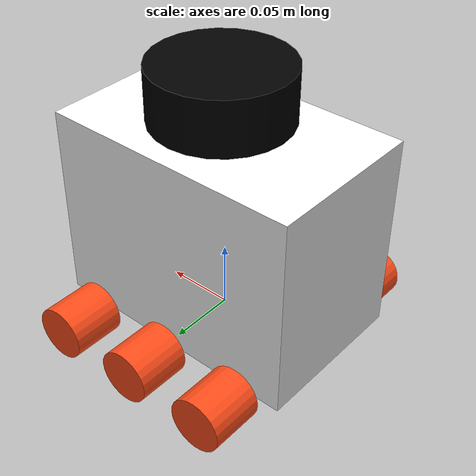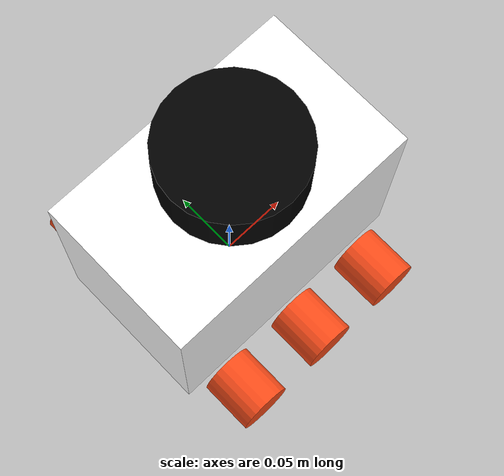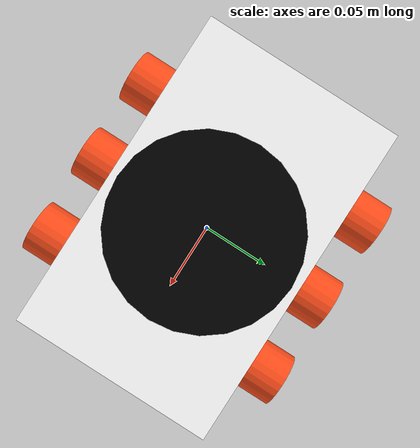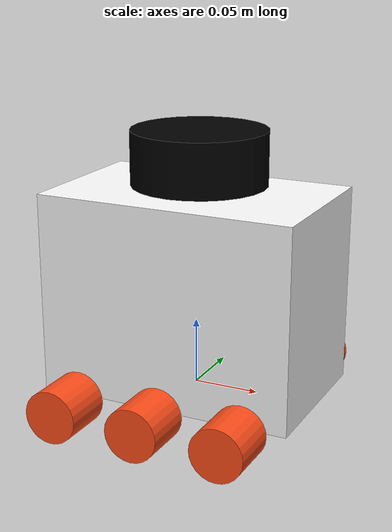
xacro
<?xml version="1.0"?>
<robot xmlns:xacro="http://www.ros.org/wiki/xacro"  name="robot">

    <xacro:arg name="use_ros2_control" default="true"/>
    <xacro:arg name="sim_mode" default="false"/>

    <xacro:include filename="robot_core.xacro" />

        <xacro:include filename="ros2_control.xacro" />
</robot>

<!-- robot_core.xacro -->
<robot xmlns:xacro="http://www.ros.org/wiki/xacro" >
    <xacro:include filename="inertial_macros.xacro"/>

   <material name="white">
        <color rgba="1 1 1 1" />
    </material>
    <material name="orange">
        <color rgba="1 0.3 0.1 1" />
    </material>
    <material name="blue">
        <color rgba="0.2 0.2 1 1" />
    </material>
    <material name="black">
        <color rgba="0 0 0 1" />
    </material>
    <!--BASE LINK-->
    <link name="base_link">

    </link>
    <!-- BASE FOOTPRINT LINK -->
    <joint name="base_footprint_joint" type="fixed">
        <parent link="base_link"/>
        <child link="base_footprint"/>
        <origin xyz="0 0 0" rpy="0 0 0"/>
    </joint>
    <link name="base_footprint">
    </link>
    <!--CHASSIS LINK-->
    <joint name="chassis_joint" type="fixed">
        <parent link="base_link"/>
        <child link="chassis"/>
        <origin xyz="-0.0975 0 0"/>  <!--ubicar el origen en la parte de atras-->
    </joint>

    <link name="chassis">
        <visual>
            <origin xyz="0.0975 0 0.075"/>
            <geometry>
                <box size="0.195 0.12 0.15"/>
            </geometry>
            <material name = "white"/>
        </visual>
        <collision>
            <origin xyz="0.0975 0 0.075"/>
            <geometry>
                <box size="0.195 0.12 0.15"/>
            </geometry>
        </collision>
        <xacro:inertial_box mass="0.5" x="0.195" y="0.12" z="0.15">
            <origin xyz="0.0975 0 0.075" rpy="0 0 0"/>
        </xacro:inertial_box>
    </link>
    <gazebo reference="chassis">
        <material>Gazebo/White</material>
    </gazebo>

    <!-- LEFT WHEELS-->
    <!--Center wheel-->
    <joint name="left_wheel_joint" type="continuous">
        <parent link="base_link"/>
        <child link="left_wheel"/>
        <origin xyz="0 0.085 0" rpy="-${pi/2} 0 0"/>
        <axis xyz="0 0 1"/>
    </joint>
    <link name="left_wheel">
        <visual>
            <geometry>
                <cylinder radius="0.02" length="0.04"/>
            </geometry>
            <material name="orange"/>
        </visual>
        <collision>
            <geometry>
                <cylinder radius="0.02" length="0.04"/>
            </geometry>
        </collision>
        <xacro:inertial_cylinder mass="0.1" length="0.04" radius="0.02">
            <origin xyz="0 0 0" rpy="0 0 0"/>
        </xacro:inertial_cylinder>
    </link>
    <gazebo reference="left_wheel">
        <material>Gazebo/Red</material>
    </gazebo>
    <!--front wheel-->
    <joint name="front_left_wheel_joint" type="fixed">
        <parent link="base_link"/>
        <child link="front_left_wheel"/>
        <origin xyz="0.065 0.085 0" rpy="-${pi/2} 0 0"/>
        <axis xyz="0 0 1"/>
    </joint>
    <link name="front_left_wheel">
        <visual>
            <geometry>
                <cylinder radius="0.02" length="0.04"/>
            </geometry>
            <material name="orange"/>
        </visual>
        <collision>
            <geometry>
                <cylinder radius="0.02" length="0.04"/>
            </geometry>
        </collision>
        <xacro:inertial_cylinder mass="0.1" length="0.04" radius="0.02">
            <origin xyz="0 0 0" rpy="0 0 0"/>
        </xacro:inertial_cylinder>
    </link>
    <gazebo reference="front_left_wheel">
        <material>Gazebo/Red</material>
    </gazebo>
    <!--back wheel-->
    <joint name="back_left_wheel_joint" type="fixed">
        <parent link="base_link"/>
        <child link="back_left_wheel"/>
        <origin xyz="-0.065 0.085 0" rpy="-${pi/2} 0 0"/>
        <axis xyz="0 0 1"/>
    </joint>
    <link name="back_left_wheel">
        <visual>
            <geometry>
                <cylinder radius="0.02" length="0.04"/>
            </geometry>
            <material name="orange"/>
        </visual>
        <collision>
            <geometry>
                <cylinder radius="0.02" length="0.04"/>
            </geometry>
        </collision>
        <xacro:inertial_cylinder mass="0.1" length="0.04" radius="0.02">
            <origin xyz="0 0 0" rpy="0 0 0"/>
        </xacro:inertial_cylinder>
    </link>
    <gazebo reference="back_left_wheel">
        <material>Gazebo/Red</material>
    </gazebo>
    <!-- RIGHT WHEELS-->
    <!--Center wheel-->
    <joint name="right_wheel_joint" type="continuous">
        <parent link="base_link"/>
        <child link="right_wheel"/>
        <origin xyz="0 -0.085 0" rpy="${pi/2} 0 0"/>
        <axis xyz="0 0 -1"/>
    </joint>
    <link name="right_wheel">
        <visual>
            <geometry>
                <cylinder radius="0.02" length="0.04"/>
            </geometry>
            <material name="orange"/>
        </visual>
        <collision>
            <geometry>
                <cylinder radius="0.02" length="0.04"/>
            </geometry>
        </collision>
        <xacro:inertial_cylinder mass="0.1" length="0.04" radius="0.02">
            <origin xyz="0 0 0" rpy="0 0 0"/>
        </xacro:inertial_cylinder>
    </link>
    <gazebo reference="right_wheel">
        <material>Gazebo/Red</material>
    </gazebo>
    <!--Front wheel-->
    <joint name="front_right_wheel_joint" type="fixed">
        <parent link="base_link"/>
        <child link="front_right_wheel"/>
        <origin xyz="0.065 -0.085 0" rpy="${pi/2} 0 0"/>
        <axis xyz="0 0 -1"/>
    </joint>
    <link name="front_right_wheel">
        <visual>
            <geometry>
                <cylinder radius="0.02" length="0.04"/>
            </geometry>
            <material name="orange"/>
        </visual>
        <collision>
            <geometry>
                <cylinder radius="0.02" length="0.04"/>
            </geometry>
        </collision>
        <xacro:inertial_cylinder mass="0.1" length="0.04" radius="0.02">
            <origin xyz="0 0 0" rpy="0 0 0"/>
        </xacro:inertial_cylinder>
    </link>
    <gazebo reference="front_right_wheel">
        <material>Gazebo/Red</material>
    </gazebo>
    <!--back wheel-->
    <joint name="back_right_wheel_joint" type="fixed">
        <parent link="base_link"/>
        <child link="back_right_wheel"/>
        <origin xyz="-0.065 -0.085 0" rpy="${pi/2} 0 0"/>
        <axis xyz="0 0 -1"/>
    </joint>
    <link name="back_right_wheel">
        <visual>
            <geometry>
                <cylinder radius="0.02" length="0.04"/>
            </geometry>
            <material name="orange"/>
        </visual>
        <collision>
            <geometry>
                <cylinder radius="0.02" length="0.04"/>
            </geometry>
        </collision>
        <xacro:inertial_cylinder mass="0.1" length="0.04" radius="0.02">
            <origin xyz="0 0 0" rpy="0 0 0"/>
        </xacro:inertial_cylinder>
    </link>
    <gazebo reference="back_right_wheel">
        <material>Gazebo/Red</material>
    </gazebo>

    <joint name = "laser_joint" type="fixed">
        <parent link = "chassis"/>
        <child link = "laser_frame"/>
        <origin xyz = "0.1 0 0.175" rpy="0 0 0" />
    </joint>

    <link name = "laser_frame">
        <visual>
            <geometry>
                <cylinder radius="0.05" length="0.04"/>
            </geometry>
            <material name="black"/>
        </visual>
        <visual>
            <origin xyz="0 0 -0.05"/>
            <geometry>
                <cylinder radius="0.01" length="0.1"/>
            </geometry>
            <material name="black"/>
        </visual>
        <collision>
            <geometry>
                <cylinder radius="0.05" length="0.04"/>
            </geometry>
        </collision>
        <xacro:inertial_cylinder mass="0.1" length="0.04" radius="0.05">
            <origin xyz="0 0 0" rpy="0 0 0"/>
        </xacro:inertial_cylinder>
    </link>
    <link name="imu_link"/>
    <joint
        name="imu_joint"
        type="fixed">
        <origin
        xyz="0.0 0 0.0"
        rpy="0 -0.07 0" />
        <parent
        link="base_link" />
        <child
        link="imu_link" />
        <axis
        xyz="1 0 0" />
    </joint>
</robot>
